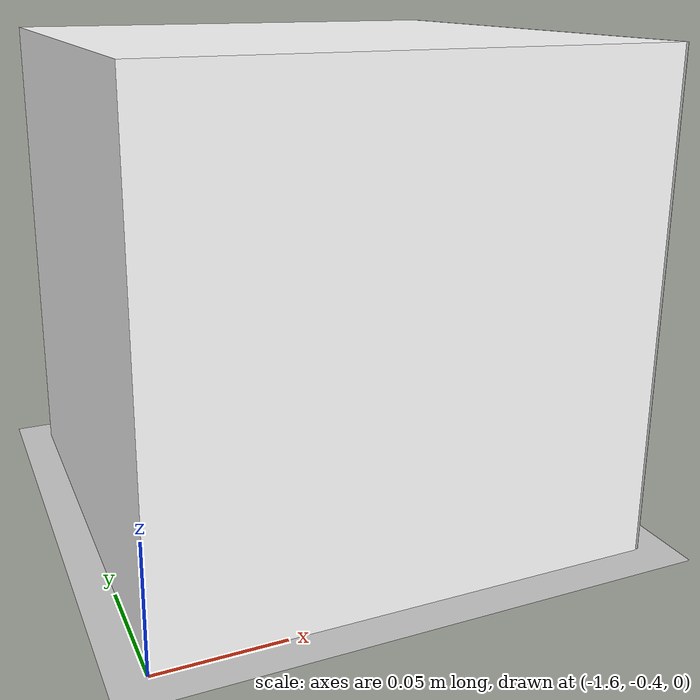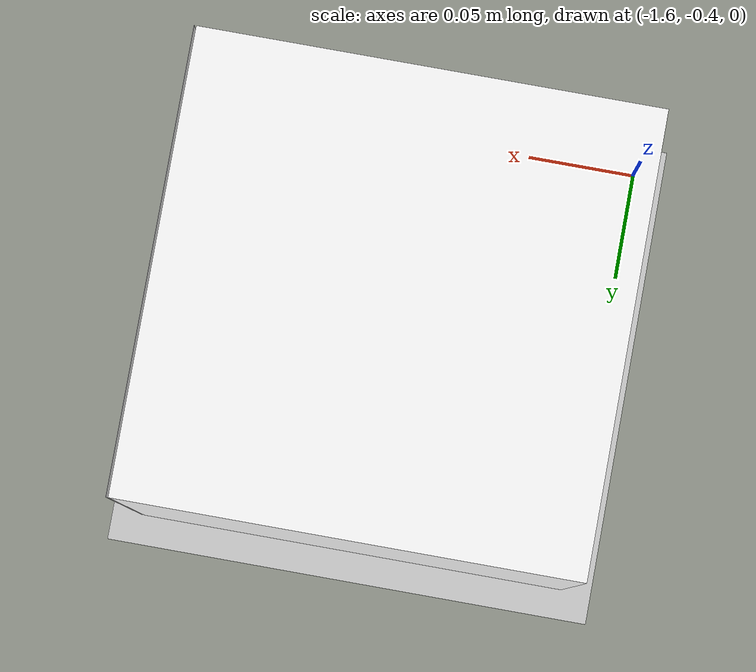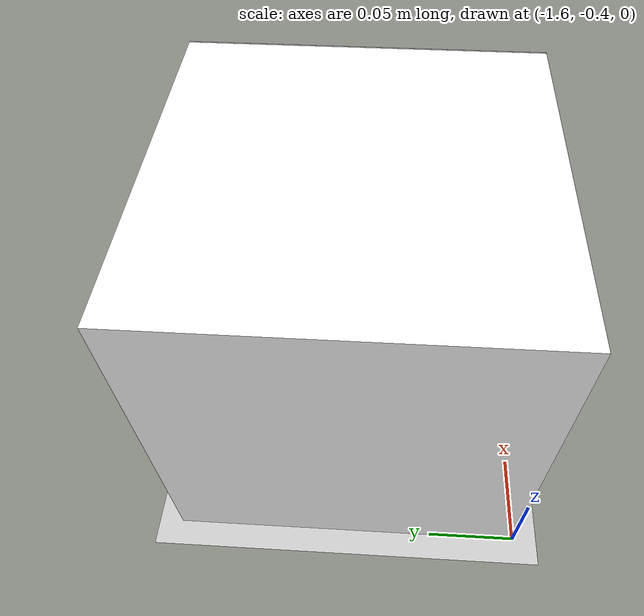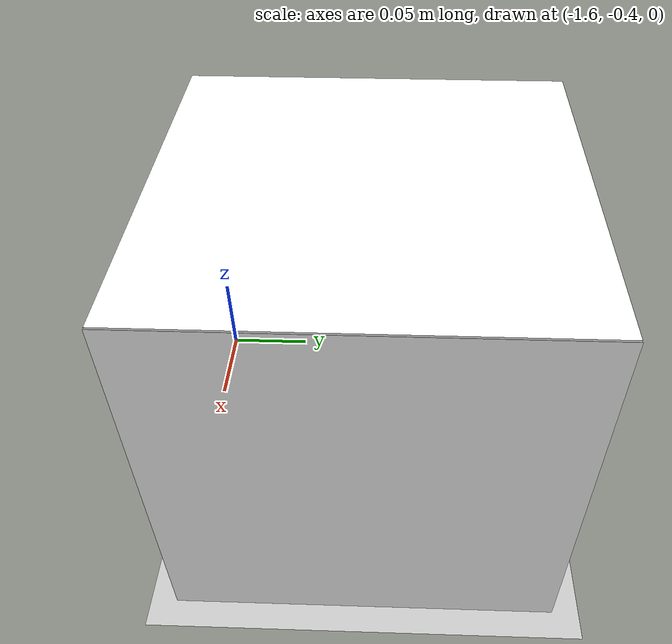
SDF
<?xml version="1.0" ?>
<sdf version="1.6">
  <world name="pantilt_world">
    <physics name="1ms" type="ignored">
      <max_step_size>0.001</max_step_size>
      <real_time_factor>1.0</real_time_factor>
    </physics>
    <plugin
      filename="gz-sim-physics-system"
      name="gz::sim::systems::Physics">
    </plugin>
    <plugin
      filename="gz-sim-user-commands-system"
      name="gz::sim::systems::UserCommands">
    </plugin>
    <plugin
      filename="gz-sim-scene-broadcaster-system"
      name="gz::sim::systems::SceneBroadcaster">
    </plugin>
    <plugin
      filename="gz-sim-contact-system"
      name="gz::sim::systems::Contact">
    </plugin>

    <plugin
      filename="gz-sim-sensors-system"
      name="gz::sim::systems::Sensors">
      <render_engine>ogre2</render_engine>
    </plugin>

    <plugin
      filename="gz-sim-velocity-control-system"
      name="gz::sim::systems::VelocityControl">
    </plugin>

    <light type="directional" name="sun">
      <cast_shadows>true</cast_shadows>
      <pose>0 0 10 0 0 0</pose>
      <diffuse>0.8 0.8 0.8 1</diffuse>
      <specular>0.2 0.2 0.2 1</specular>
      <attenuation>
        <range>1000</range>
        <constant>0.9</constant>
        <linear>0.01</linear>
        <quadratic>0.001</quadratic>
      </attenuation>
      <direction>-0.5 0.1 -0.9</direction>
    </light>

    <model name="ground_plane">
      <static>true</static>
      <link name="link">
        <collision name="collision">
          <geometry>
            <plane>
              <normal>0 0 1</normal>
              <size>100 100</size>
            </plane>
          </geometry>
        </collision>
        <visual name="visual">
          <geometry>
            <plane>
              <normal>0 0 1</normal>
              <size>100 100</size>
            </plane>
          </geometry>
          <material>
            <ambient>0.8 0.8 0.8 1</ambient>
            <diffuse>0.8 0.8 0.8 1</diffuse>
            <specular>0.8 0.8 0.8 1</specular>
          </material>
        </visual>
      </link>
    </model>

    <include>
      <uri>model://cubo_aruco</uri>
      <name>cubo_aruco</name>
      <pose>-1.5 -0.3 0.1 0 0 0</pose>
    </include>

  </world>
</sdf>

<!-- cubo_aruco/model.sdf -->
<sdf version="1.9">
  <model name="cubo_aruco">
    <pose>1.5 0 0.5 0 0 0</pose>

    <link name="link">
      <kinematic>true</kinematic>

      <inertial>
        <mass>0.5</mass>
        <inertia>
          <ixx>0.00333</ixx>
          <iyy>0.00333</iyy>
          <izz>0.00333</izz>
          <ixy>0</ixy>
          <ixz>0</ixz>
          <iyz>0</iyz>
        </inertia>
      </inertial>

      <collision name="collision">
        <geometry>
          <box><size>0.2 0.2 0.2</size></box>
        </geometry>
      </collision>

      <!-- Cuerpo del cubo (5 caras visibles, color simple) -->
      <visual name="cuerpo">
        <geometry>
          <box><size>0.2 0.2 0.2</size></box>
        </geometry>
        <material>
          <ambient>1 1 1 1</ambient>
          <diffuse>1 1 1 1</diffuse>
          <specular>0.1 0.1 0.1 1</specular>
        </material>
      </visual>

      <!-- Cara frontal con el marcador ArUco, ligeramente
           desplazada hacia afuera para evitar z-fighting con "cuerpo" -->
      <visual name="cara_aruco">
        <pose>0.101 0 0 1.5708 0 1.5708</pose>
        <geometry>
          <plane><size>0.2 0.2</size></plane>
        </geometry>
        <material>
          <ambient>1 1 1 1</ambient>
          <diffuse>1 1 1 1</diffuse>
          <specular>0 0 0 1</specular>
          <pbr>
            <metal>
              <albedo_map>materials/textures/aruco_23.png</albedo_map>
              <roughness>1.0</roughness>
              <metalness>0.0</metalness>
            </metal>
          </pbr>
        </material>
      </visual>
    </link>

    <plugin filename="gz-sim-velocity-control-system"
            name="gz::sim::systems::VelocityControl">
      <topic>/cubo_aruco/cmd_vel</topic>
    </plugin>
  </model>
</sdf>
